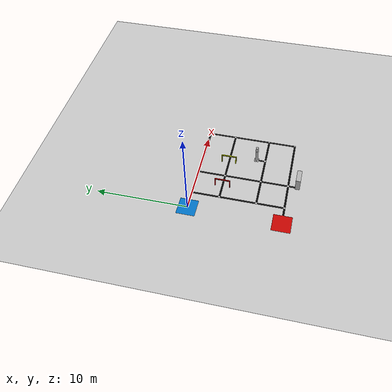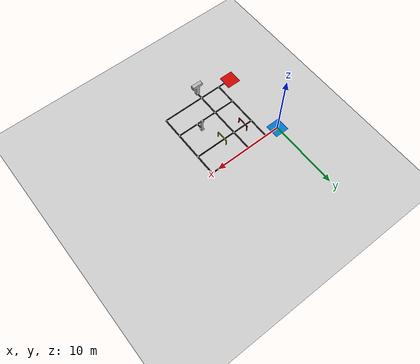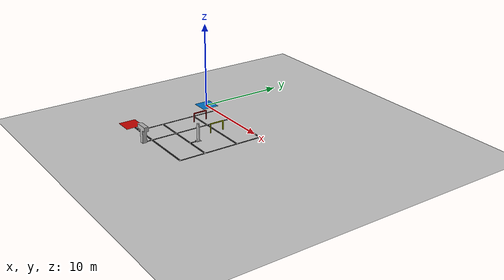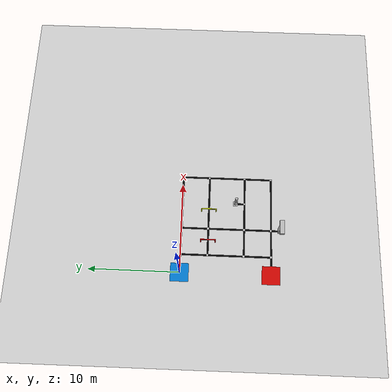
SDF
<?xml version="1.0" encoding="UTF-8"?>
<sdf version="1.9">
  <world name="firamap">
    <physics type="ode">
      <max_step_size>0.004</max_step_size>
      <real_time_factor>1.0</real_time_factor>
      <real_time_update_rate>250</real_time_update_rate>
    </physics>
    <plugin name="gz::sim::systems::Physics" filename="gz-sim-physics-system"/>
    <plugin name="gz::sim::systems::UserCommands" filename="gz-sim-user-commands-system"/>
    <plugin name="gz::sim::systems::SceneBroadcaster" filename="gz-sim-scene-broadcaster-system"/>
    <plugin name="gz::sim::systems::Contact" filename="gz-sim-contact-system"/>
    <plugin name="gz::sim::systems::Imu" filename="gz-sim-imu-system"/>
    <plugin name="gz::sim::systems::AirPressure" filename="gz-sim-air-pressure-system"/>
    <plugin name="gz::sim::systems::ApplyLinkWrench" filename="gz-sim-apply-link-wrench-system"/>
    <plugin name="gz::sim::systems::NavSat" filename="gz-sim-navsat-system"/>
    <plugin name="gz::sim::systems::Sensors" filename="gz-sim-sensors-system">
      <render_engine>ogre2</render_engine>
    </plugin>
    <gui fullscreen="false">
      <!-- 3D scene -->
      <plugin filename="MinimalScene" name="3D View">
        <gz-gui>
          <title>3D View</title>
          <property type="bool" key="showTitleBar">false</property>
          <property type="string" key="state">docked</property>
        </gz-gui>
        <engine>ogre2</engine>
        <scene>scene</scene>
        <ambient_light>0.4 0.4 0.4</ambient_light>
        <background_color>0.8 0.8 0.8</background_color>
        <camera_pose>-6 0 6 0 0.5 0</camera_pose>
        <camera_clip>
          <near>0.25</near>
          <far>25000</far>
        </camera_clip>
      </plugin>
      <!-- Plugins that add functionality to the scene -->
      <plugin filename="EntityContextMenuPlugin" name="Entity context menu">
        <gz-gui>
          <property key="state" type="string">floating</property>
          <property key="width" type="double">5</property>
          <property key="height" type="double">5</property>
          <property key="showTitleBar" type="bool">false</property>
        </gz-gui>
      </plugin>
      <plugin filename="GzSceneManager" name="Scene Manager">
        <gz-gui>
          <property key="resizable" type="bool">false</property>
          <property key="width" type="double">5</property>
          <property key="height" type="double">5</property>
          <property key="state" type="string">floating</property>
          <property key="showTitleBar" type="bool">false</property>
        </gz-gui>
      </plugin>
      <plugin filename="InteractiveViewControl" name="Interactive view control">
        <gz-gui>
          <property key="resizable" type="bool">false</property>
          <property key="width" type="double">5</property>
          <property key="height" type="double">5</property>
          <property key="state" type="string">floating</property>
          <property key="showTitleBar" type="bool">false</property>
        </gz-gui>
      </plugin>
      <plugin filename="CameraTracking" name="Camera Tracking">
        <gz-gui>
          <property key="resizable" type="bool">false</property>
          <property key="width" type="double">5</property>
          <property key="height" type="double">5</property>
          <property key="state" type="string">floating</property>
          <property key="showTitleBar" type="bool">false</property>
        </gz-gui>
      </plugin>
      <plugin filename="MarkerManager" name="Marker manager">
        <gz-gui>
          <property key="resizable" type="bool">false</property>
          <property key="width" type="double">5</property>
          <property key="height" type="double">5</property>
          <property key="state" type="string">floating</property>
          <property key="showTitleBar" type="bool">false</property>
        </gz-gui>
      </plugin>
      <plugin filename="SelectEntities" name="Select Entities">
        <gz-gui>
          <anchors target="Select entities">
            <line own="right" target="right"/>
            <line own="top" target="top"/>
          </anchors>
          <property key="resizable" type="bool">false</property>
          <property key="width" type="double">5</property>
          <property key="height" type="double">5</property>
          <property key="state" type="string">floating</property>
          <property key="showTitleBar" type="bool">false</property>
        </gz-gui>
      </plugin>
      <plugin filename="VisualizationCapabilities" name="Visualization Capabilities">
        <gz-gui>
          <property key="resizable" type="bool">false</property>
          <property key="width" type="double">5</property>
          <property key="height" type="double">5</property>
          <property key="state" type="string">floating</property>
          <property key="showTitleBar" type="bool">false</property>
        </gz-gui>
      </plugin>
      <plugin filename="Spawn" name="Spawn Entities">
        <gz-gui>
          <anchors target="Select entities">
            <line own="right" target="right"/>
            <line own="top" target="top"/>
          </anchors>
          <property key="resizable" type="bool">false</property>
          <property key="width" type="double">5</property>
          <property key="height" type="double">5</property>
          <property key="state" type="string">floating</property>
          <property key="showTitleBar" type="bool">false</property>
        </gz-gui>
      </plugin>
      <plugin name="World control" filename="WorldControl">
        <gz-gui>
          <title>World control</title>
          <property type="bool" key="showTitleBar">0</property>
          <property type="bool" key="resizable">0</property>
          <property type="double" key="height">72</property>
          <property type="double" key="width">121</property>
          <property type="double" key="z">1</property>
          <property type="string" key="state">floating</property>
          <anchors target="3D View">
            <line own="left" target="left"/>
            <line own="bottom" target="bottom"/>
          </anchors>
        </gz-gui>
        <play_pause>1</play_pause>
        <step>1</step>
        <start_paused>1</start_paused>
      </plugin>
      <plugin name="World stats" filename="WorldStats">
        <gz-gui>
          <title>World stats</title>
          <property type="bool" key="showTitleBar">0</property>
          <property type="bool" key="resizable">0</property>
          <property type="double" key="height">110</property>
          <property type="double" key="width">290</property>
          <property type="double" key="z">1</property>
          <property type="string" key="state">floating</property>
          <anchors target="3D View">
            <line own="right" target="right"/>
            <line own="bottom" target="bottom"/>
          </anchors>
        </gz-gui>
        <sim_time>1</sim_time>
        <real_time>1</real_time>
        <real_time_factor>1</real_time_factor>
        <iterations>1</iterations>
      </plugin>
      <plugin name="Entity tree" filename="EntityTree"/>
    </gui>
    <gravity>0 0 -9.8</gravity>
    <magnetic_field>6e-06 2.3e-05 -4.2e-05</magnetic_field>
    <atmosphere type="adiabatic"/>
    <scene>
      <grid>false</grid>
      <ambient>0.4 0.4 0.4 1</ambient>
      <background>0.7 0.7 0.7 1</background>
      <shadows>true</shadows>
    </scene>
    <model name='ground_plane'>
      <static>true</static>
      <link name='link'>
        <collision name='collision'>
          <geometry>
            <plane>
              <normal>0 0 1</normal>
              <size>100 100</size>
            </plane>
          </geometry>
          <surface>
            <friction>
              <ode/>
            </friction>
            <bounce/>
            <contact/>
          </surface>
        </collision>
        <visual name='visual'>
          <geometry>
            <plane>
              <normal>0 0 1</normal>
              <size>100 100</size>
            </plane>
          </geometry>
          <material>
            <ambient>0.800000012 0.800000012 0.800000012 1</ambient>
            <diffuse>0.800000012 0.800000012 0.800000012 1</diffuse>
            <specular>0.800000012 0.800000012 0.800000012 1</specular>
          </material>
        </visual>
        <pose>0 0 0 0 0 0</pose>
        <inertial>
          <pose>0 0 0 0 0 0</pose>
          <mass>1</mass>
          <inertia>
            <ixx>1</ixx>
            <ixy>0</ixy>
            <ixz>0</ixz>
            <iyy>1</iyy>
            <iyz>0</iyz>
            <izz>1</izz>
          </inertia>
        </inertial>
        <enable_wind>false</enable_wind>
      </link>
      <pose>0 0 0 0 0 0</pose>
      <self_collide>false</self_collide>
    </model>
    <model name='model'>
      <link name='link'>
        <visual name='visual'>
          <geometry>
            <mesh>
              <uri>model://firamodel/meshes/model.dae</uri>
            </mesh>
          </geometry>
        </visual>
        <collision name='collision'>
          <geometry>
            <mesh>
              <uri>model://firamodel/meshes/model.dae</uri>
            </mesh>
          </geometry>
        </collision>
        <pose>0 0 0 0 0 0</pose>
        <inertial>
          <pose>0 0 0 0 0 0</pose>
          <mass>1</mass>
          <inertia>
            <ixx>1</ixx>
            <ixy>0</ixy>
            <ixz>0</ixz>
            <iyy>1</iyy>
            <iyz>0</iyz>
            <izz>1</izz>
          </inertia>
        </inertial>
        <enable_wind>false</enable_wind>
      </link>
      <pose>1 0 0.02 0 0 3.1400000000000001</pose>
      <static>false</static>
      <self_collide>false</self_collide>
    </model>
    <light name='sun' type='directional'>
      <pose>0 0 10 0 0 0</pose>
      <cast_shadows>true</cast_shadows>
      <intensity>1</intensity>
      <direction>-0.5 0.10000000000000001 -0.90000000000000002</direction>
      <diffuse>0.800000012 0.800000012 0.800000012 1</diffuse>
      <specular>0.200000003 0.200000003 0.200000003 1</specular>
      <attenuation>
        <range>1000</range>
        <linear>0.01</linear>
        <constant>0.90000000000000002</constant>
        <quadratic>0.001</quadratic>
      </attenuation>
      <spot>
        <inner_angle>0</inner_angle>
        <outer_angle>0</outer_angle>
        <falloff>0</falloff>
      </spot>
    </light>
    <spherical_coordinates>
      <surface_model>EARTH_WGS84</surface_model>
      <world_frame_orientation>ENU</world_frame_orientation>
      <latitude_deg>47.397971057728974</latitude_deg>
      <longitude_deg> 8.546163739800146</longitude_deg>
      <elevation>0</elevation>
    </spherical_coordinates>
  </world>
</sdf>
